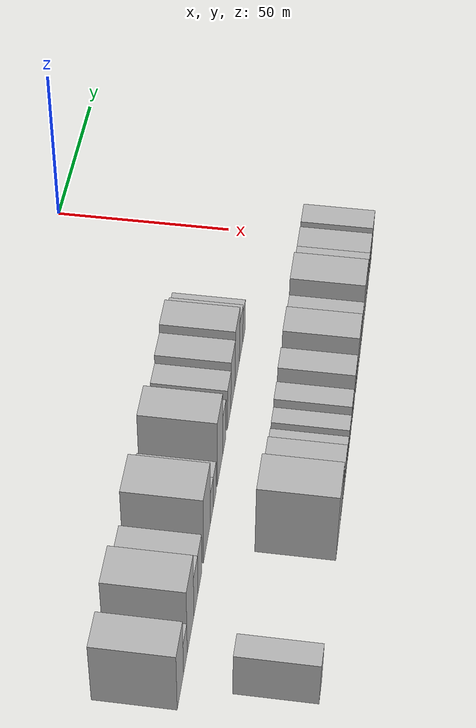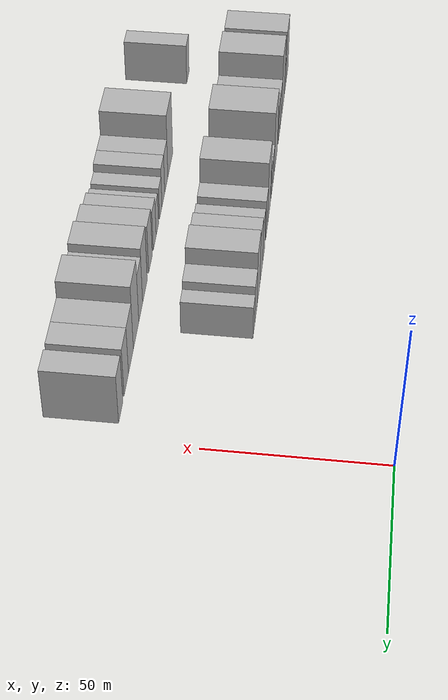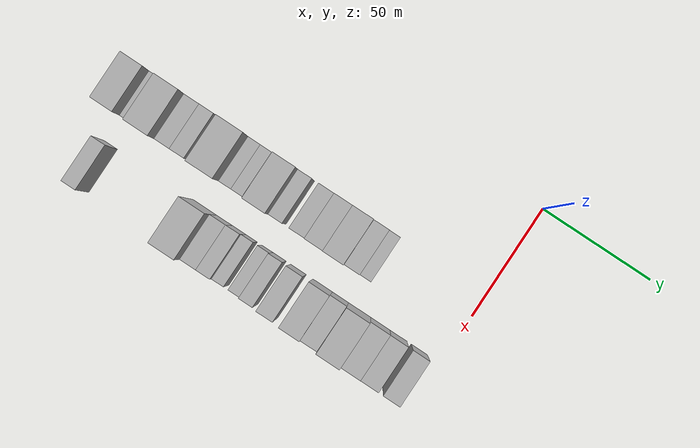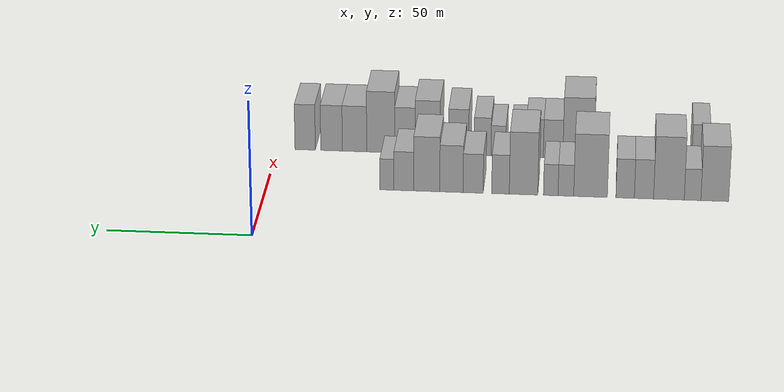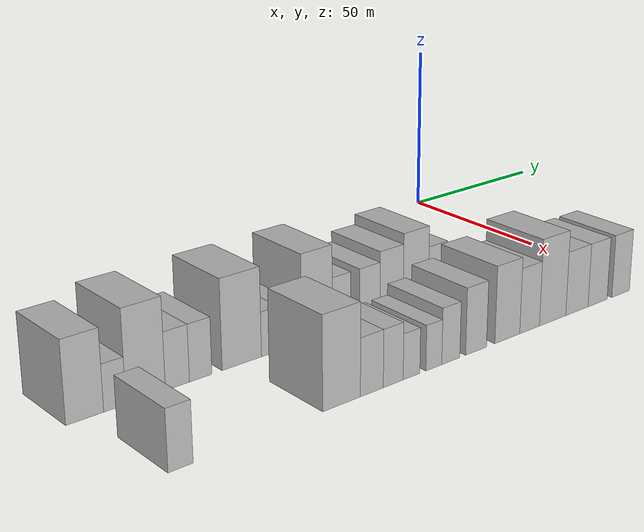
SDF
<sdf version="1.6">
 <world name="default">
  <model name="building_15">
   <static>1</static>
   <pose>50.0000 -158.1807 0 0.000000 0.000000 0.000000</pose>
   <link name="link">
    <pose>0 0 10.50 0 0 0</pose>
    <collision name="collision"><geometry><box><size>20.0000 9.7175 21.0000</size></box></geometry></collision>
    <visual name="visual">
     <cast_shadows>0</cast_shadows>
     <geometry><box><size>20.0000 9.7175 21.0000</size></box></geometry>
     <material>
      <script>
       <uri>model://HANNAS_wall/materials/scripts</uri>
       <uri>model://HANNAS_wall/materials/textures</uri>
       <name>vrc/HANNAS_wall</name>
      </script>
     </material>
    </visual>
   </link>
  </model>
  <model name="building_16">
   <static>1</static>
   <pose>50.0000 -150.4176 0 0.000000 0.000000 0.000000</pose>
   <link name="link">
    <pose>0 0 6.00 0 0 0</pose>
    <collision name="collision"><geometry><box><size>20.0000 5.8087 12.0000</size></box></geometry></collision>
    <visual name="visual">
     <cast_shadows>0</cast_shadows>
     <geometry><box><size>20.0000 5.8087 12.0000</size></box></geometry>
     <material>
      <script>
       <uri>model://HANNAS_wall/materials/scripts</uri>
       <uri>model://HANNAS_wall/materials/textures</uri>
       <name>vrc/HANNAS_wall</name>
      </script>
     </material>
    </visual>
   </link>
  </model>
  <model name="building_17">
   <static>1</static>
   <pose>50.0000 -142.1498 0 0.000000 0.000000 0.000000</pose>
   <link name="link">
    <pose>0 0 12.00 0 0 0</pose>
    <collision name="collision"><geometry><box><size>20.0000 10.7268 24.0000</size></box></geometry></collision>
    <visual name="visual">
     <cast_shadows>0</cast_shadows>
     <geometry><box><size>20.0000 10.7268 24.0000</size></box></geometry>
     <material>
      <script>
       <uri>model://HANNAS_wall/materials/scripts</uri>
       <uri>model://HANNAS_wall/materials/textures</uri>
       <name>vrc/HANNAS_wall</name>
      </script>
     </material>
    </visual>
   </link>
  </model>
  <model name="building_18">
   <static>1</static>
   <pose>50.0000 -133.4117 0 0.000000 0.000000 0.000000</pose>
   <link name="link">
    <pose>0 0 7.50 0 0 0</pose>
    <collision name="collision"><geometry><box><size>20.0000 6.7494 15.0000</size></box></geometry></collision>
    <visual name="visual">
     <cast_shadows>0</cast_shadows>
     <geometry><box><size>20.0000 6.7494 15.0000</size></box></geometry>
     <material>
      <script>
       <uri>model://HANNAS_wall/materials/scripts</uri>
       <uri>model://HANNAS_wall/materials/textures</uri>
       <name>vrc/HANNAS_wall</name>
      </script>
     </material>
    </visual>
   </link>
  </model>
  <model name="building_19">
   <static>1</static>
   <pose>50.0000 -126.8120 0 0.000000 0.000000 0.000000</pose>
   <link name="link">
    <pose>0 0 7.50 0 0 0</pose>
    <collision name="collision"><geometry><box><size>20.0000 6.4500 15.0000</size></box></geometry></collision>
    <visual name="visual">
     <cast_shadows>0</cast_shadows>
     <geometry><box><size>20.0000 6.4500 15.0000</size></box></geometry>
     <material>
      <script>
       <uri>model://HANNAS_wall/materials/scripts</uri>
       <uri>model://HANNAS_wall/materials/textures</uri>
       <name>vrc/HANNAS_wall</name>
      </script>
     </material>
    </visual>
   </link>
  </model>
  <model name="building_20">
   <static>1</static>
   <pose>50.0000 -114.6766 0 0.000000 0.000000 0.000000</pose>
   <link name="link">
    <pose>0 0 12.00 0 0 0</pose>
    <collision name="collision"><geometry><box><size>20.0000 11.8208 24.0000</size></box></geometry></collision>
    <visual name="visual">
     <cast_shadows>0</cast_shadows>
     <geometry><box><size>20.0000 11.8208 24.0000</size></box></geometry>
     <material>
      <script>
       <uri>model://HANNAS_wall/materials/scripts</uri>
       <uri>model://HANNAS_wall/materials/textures</uri>
       <name>vrc/HANNAS_wall</name>
      </script>
     </material>
    </visual>
   </link>
  </model>
  <model name="building_21">
   <static>1</static>
   <pose>50.0000 -106.0119 0 0.000000 0.000000 0.000000</pose>
   <link name="link">
    <pose>0 0 6.00 0 0 0</pose>
    <collision name="collision"><geometry><box><size>20.0000 5.5086 12.0000</size></box></geometry></collision>
    <visual name="visual">
     <cast_shadows>0</cast_shadows>
     <geometry><box><size>20.0000 5.5086 12.0000</size></box></geometry>
     <material>
      <script>
       <uri>model://HANNAS_wall/materials/scripts</uri>
       <uri>model://HANNAS_wall/materials/textures</uri>
       <name>vrc/HANNAS_wall</name>
      </script>
     </material>
    </visual>
   </link>
  </model>
  <model name="building_22">
   <static>1</static>
   <pose>50.0000 -100.6855 0 0.000000 0.000000 0.000000</pose>
   <link name="link">
    <pose>0 0 6.00 0 0 0</pose>
    <collision name="collision"><geometry><box><size>20.0000 5.1442 12.0000</size></box></geometry></collision>
    <visual name="visual">
     <cast_shadows>0</cast_shadows>
     <geometry><box><size>20.0000 5.1442 12.0000</size></box></geometry>
     <material>
      <script>
       <uri>model://HANNAS_wall/materials/scripts</uri>
       <uri>model://HANNAS_wall/materials/textures</uri>
       <name>vrc/HANNAS_wall</name>
      </script>
     </material>
    </visual>
   </link>
  </model>
  <model name="building_23">
   <static>1</static>
   <pose>50.0000 -91.1002 0 0.000000 0.000000 0.000000</pose>
   <link name="link">
    <pose>0 0 12.00 0 0 0</pose>
    <collision name="collision"><geometry><box><size>20.0000 10.0264 24.0000</size></box></geometry></collision>
    <visual name="visual">
     <cast_shadows>0</cast_shadows>
     <geometry><box><size>20.0000 10.0264 24.0000</size></box></geometry>
     <material>
      <script>
       <uri>model://HANNAS_wall/materials/scripts</uri>
       <uri>model://HANNAS_wall/materials/textures</uri>
       <name>vrc/HANNAS_wall</name>
      </script>
     </material>
    </visual>
   </link>
  </model>
  <model name="building_24">
   <static>1</static>
   <pose>50.0000 -82.9708 0 0.000000 0.000000 0.000000</pose>
   <link name="link">
    <pose>0 0 7.50 0 0 0</pose>
    <collision name="collision"><geometry><box><size>20.0000 6.2323 15.0000</size></box></geometry></collision>
    <visual name="visual">
     <cast_shadows>0</cast_shadows>
     <geometry><box><size>20.0000 6.2323 15.0000</size></box></geometry>
     <material>
      <script>
       <uri>model://HANNAS_wall/materials/scripts</uri>
       <uri>model://HANNAS_wall/materials/textures</uri>
       <name>vrc/HANNAS_wall</name>
      </script>
     </material>
    </visual>
   </link>
  </model>
  <model name="building_25">
   <static>1</static>
   <pose>50.0000 -73.3102 0 0.000000 0.000000 0.000000</pose>
   <link name="link">
    <pose>0 0 7.50 0 0 0</pose>
    <collision name="collision"><geometry><box><size>20.0000 7.0889 15.0000</size></box></geometry></collision>
    <visual name="visual">
     <cast_shadows>0</cast_shadows>
     <geometry><box><size>20.0000 7.0889 15.0000</size></box></geometry>
     <material>
      <script>
       <uri>model://HANNAS_wall/materials/scripts</uri>
       <uri>model://HANNAS_wall/materials/textures</uri>
       <name>vrc/HANNAS_wall</name>
      </script>
     </material>
    </visual>
   </link>
  </model>
  <model name="building_26">
   <static>1</static>
   <pose>50.0000 -65.6326 0 0.000000 0.000000 0.000000</pose>
   <link name="link">
    <pose>0 0 9.00 0 0 0</pose>
    <collision name="collision"><geometry><box><size>20.0000 8.2663 18.0000</size></box></geometry></collision>
    <visual name="visual">
     <cast_shadows>0</cast_shadows>
     <geometry><box><size>20.0000 8.2663 18.0000</size></box></geometry>
     <material>
      <script>
       <uri>model://HANNAS_wall/materials/scripts</uri>
       <uri>model://HANNAS_wall/materials/textures</uri>
       <name>vrc/HANNAS_wall</name>
      </script>
     </material>
    </visual>
   </link>
  </model>
  <model name="building_27">
   <static>1</static>
   <pose>50.0000 -56.8797 0 0.000000 0.000000 0.000000</pose>
   <link name="link">
    <pose>0 0 10.50 0 0 0</pose>
    <collision name="collision"><geometry><box><size>20.0000 9.2396 21.0000</size></box></geometry></collision>
    <visual name="visual">
     <cast_shadows>0</cast_shadows>
     <geometry><box><size>20.0000 9.2396 21.0000</size></box></geometry>
     <material>
      <script>
       <uri>model://HANNAS_wall/materials/scripts</uri>
       <uri>model://HANNAS_wall/materials/textures</uri>
       <name>vrc/HANNAS_wall</name>
      </script>
     </material>
    </visual>
   </link>
  </model>
  <model name="building_28">
   <static>1</static>
   <pose>50.0000 -48.7602 0 0.000000 0.000000 0.000000</pose>
   <link name="link">
    <pose>0 0 7.50 0 0 0</pose>
    <collision name="collision"><geometry><box><size>20.0000 6.9993 15.0000</size></box></geometry></collision>
    <visual name="visual">
     <cast_shadows>0</cast_shadows>
     <geometry><box><size>20.0000 6.9993 15.0000</size></box></geometry>
     <material>
      <script>
       <uri>model://HANNAS_wall/materials/scripts</uri>
       <uri>model://HANNAS_wall/materials/textures</uri>
       <name>vrc/HANNAS_wall</name>
      </script>
     </material>
    </visual>
   </link>
  </model>
  <model name="building_29">
   <static>1</static>
   <pose>50.0000 -42.7589 0 0.000000 0.000000 0.000000</pose>
   <link name="link">
    <pose>0 0 6.00 0 0 0</pose>
    <collision name="collision"><geometry><box><size>20.0000 5.0032 12.0000</size></box></geometry></collision>
    <visual name="visual">
     <cast_shadows>0</cast_shadows>
     <geometry><box><size>20.0000 5.0032 12.0000</size></box></geometry>
     <material>
      <script>
       <uri>model://HANNAS_wall/materials/scripts</uri>
       <uri>model://HANNAS_wall/materials/textures</uri>
       <name>vrc/HANNAS_wall</name>
      </script>
     </material>
    </visual>
   </link>
  </model>
  <model name="building_71">
   <static>1</static>
   <pose>82.0000 -153.7843 0 0.000000 0.000000 0.000000</pose>
   <link name="link">
    <pose>0 0 7.50 0 0 0</pose>
    <collision name="collision"><geometry><box><size>20.0000 6.3149 15.0000</size></box></geometry></collision>
    <visual name="visual">
     <cast_shadows>0</cast_shadows>
     <geometry><box><size>20.0000 6.3149 15.0000</size></box></geometry>
     <material>
      <script>
       <uri>model://HANNAS_wall/materials/scripts</uri>
       <uri>model://HANNAS_wall/materials/textures</uri>
       <name>vrc/HANNAS_wall</name>
      </script>
     </material>
    </visual>
   </link>
  </model>
  <model name="building_72">
   <static>1</static>
   <pose>82.0000 -109.7292 0 0.000000 0.000000 0.000000</pose>
   <link name="link">
    <pose>0 0 12.00 0 0 0</pose>
    <collision name="collision"><geometry><box><size>20.0000 11.2651 24.0000</size></box></geometry></collision>
    <visual name="visual">
     <cast_shadows>0</cast_shadows>
     <geometry><box><size>20.0000 11.2651 24.0000</size></box></geometry>
     <material>
      <script>
       <uri>model://HANNAS_wall/materials/scripts</uri>
       <uri>model://HANNAS_wall/materials/textures</uri>
       <name>vrc/HANNAS_wall</name>
      </script>
     </material>
    </visual>
   </link>
  </model>
  <model name="building_73">
   <static>1</static>
   <pose>82.0000 -100.5421 0 0.000000 0.000000 0.000000</pose>
   <link name="link">
    <pose>0 0 7.50 0 0 0</pose>
    <collision name="collision"><geometry><box><size>20.0000 7.1089 15.0000</size></box></geometry></collision>
    <visual name="visual">
     <cast_shadows>0</cast_shadows>
     <geometry><box><size>20.0000 7.1089 15.0000</size></box></geometry>
     <material>
      <script>
       <uri>model://HANNAS_wall/materials/scripts</uri>
       <uri>model://HANNAS_wall/materials/textures</uri>
       <name>vrc/HANNAS_wall</name>
      </script>
     </material>
    </visual>
   </link>
  </model>
  <model name="building_74">
   <static>1</static>
   <pose>82.0000 -93.8319 0 0.000000 0.000000 0.000000</pose>
   <link name="link">
    <pose>0 0 7.50 0 0 0</pose>
    <collision name="collision"><geometry><box><size>20.0000 6.3115 15.0000</size></box></geometry></collision>
    <visual name="visual">
     <cast_shadows>0</cast_shadows>
     <geometry><box><size>20.0000 6.3115 15.0000</size></box></geometry>
     <material>
      <script>
       <uri>model://HANNAS_wall/materials/scripts</uri>
       <uri>model://HANNAS_wall/materials/textures</uri>
       <name>vrc/HANNAS_wall</name>
      </script>
     </material>
    </visual>
   </link>
  </model>
  <model name="building_75">
   <static>1</static>
   <pose>82.0000 -87.9706 0 0.000000 0.000000 0.000000</pose>
   <link name="link">
    <pose>0 0 6.00 0 0 0</pose>
    <collision name="collision"><geometry><box><size>20.0000 5.4111 12.0000</size></box></geometry></collision>
    <visual name="visual">
     <cast_shadows>0</cast_shadows>
     <geometry><box><size>20.0000 5.4111 12.0000</size></box></geometry>
     <material>
      <script>
       <uri>model://HANNAS_wall/materials/scripts</uri>
       <uri>model://HANNAS_wall/materials/textures</uri>
       <name>vrc/HANNAS_wall</name>
      </script>
     </material>
    </visual>
   </link>
  </model>
  <model name="building_76">
   <static>1</static>
   <pose>82.0000 -80.6211 0 0.000000 0.000000 0.000000</pose>
   <link name="link">
    <pose>0 0 6.00 0 0 0</pose>
    <collision name="collision"><geometry><box><size>20.0000 5.2880 12.0000</size></box></geometry></collision>
    <visual name="visual">
     <cast_shadows>0</cast_shadows>
     <geometry><box><size>20.0000 5.2880 12.0000</size></box></geometry>
     <material>
      <script>
       <uri>model://HANNAS_wall/materials/scripts</uri>
       <uri>model://HANNAS_wall/materials/textures</uri>
       <name>vrc/HANNAS_wall</name>
      </script>
     </material>
    </visual>
   </link>
  </model>
  <model name="building_77">
   <static>1</static>
   <pose>82.0000 -74.8862 0 0.000000 0.000000 0.000000</pose>
   <link name="link">
    <pose>0 0 7.50 0 0 0</pose>
    <collision name="collision"><geometry><box><size>20.0000 6.1816 15.0000</size></box></geometry></collision>
    <visual name="visual">
     <cast_shadows>0</cast_shadows>
     <geometry><box><size>20.0000 6.1816 15.0000</size></box></geometry>
     <material>
      <script>
       <uri>model://HANNAS_wall/materials/scripts</uri>
       <uri>model://HANNAS_wall/materials/textures</uri>
       <name>vrc/HANNAS_wall</name>
      </script>
     </material>
    </visual>
   </link>
  </model>
  <model name="building_78">
   <static>1</static>
   <pose>82.0000 -66.1089 0 0.000000 0.000000 0.000000</pose>
   <link name="link">
    <pose>0 0 9.00 0 0 0</pose>
    <collision name="collision"><geometry><box><size>20.0000 7.3730 18.0000</size></box></geometry></collision>
    <visual name="visual">
     <cast_shadows>0</cast_shadows>
     <geometry><box><size>20.0000 7.3730 18.0000</size></box></geometry>
     <material>
      <script>
       <uri>model://HANNAS_wall/materials/scripts</uri>
       <uri>model://HANNAS_wall/materials/textures</uri>
       <name>vrc/HANNAS_wall</name>
      </script>
     </material>
    </visual>
   </link>
  </model>
  <model name="building_79">
   <static>1</static>
   <pose>82.0000 -54.8564 0 0.000000 0.000000 0.000000</pose>
   <link name="link">
    <pose>0 0 10.50 0 0 0</pose>
    <collision name="collision"><geometry><box><size>20.0000 9.1320 21.0000</size></box></geometry></collision>
    <visual name="visual">
     <cast_shadows>0</cast_shadows>
     <geometry><box><size>20.0000 9.1320 21.0000</size></box></geometry>
     <material>
      <script>
       <uri>model://HANNAS_wall/materials/scripts</uri>
       <uri>model://HANNAS_wall/materials/textures</uri>
       <name>vrc/HANNAS_wall</name>
      </script>
     </material>
    </visual>
   </link>
  </model>
  <model name="building_80">
   <static>1</static>
   <pose>82.0000 -46.5718 0 0.000000 0.000000 0.000000</pose>
   <link name="link">
    <pose>0 0 9.00 0 0 0</pose>
    <collision name="collision"><geometry><box><size>20.0000 7.4371 18.0000</size></box></geometry></collision>
    <visual name="visual">
     <cast_shadows>0</cast_shadows>
     <geometry><box><size>20.0000 7.4371 18.0000</size></box></geometry>
     <material>
      <script>
       <uri>model://HANNAS_wall/materials/scripts</uri>
       <uri>model://HANNAS_wall/materials/textures</uri>
       <name>vrc/HANNAS_wall</name>
      </script>
     </material>
    </visual>
   </link>
  </model>
  <model name="building_81">
   <static>1</static>
   <pose>82.0000 -37.7172 0 0.000000 0.000000 0.000000</pose>
   <link name="link">
    <pose>0 0 12.00 0 0 0</pose>
    <collision name="collision"><geometry><box><size>20.0000 10.2720 24.0000</size></box></geometry></collision>
    <visual name="visual">
     <cast_shadows>0</cast_shadows>
     <geometry><box><size>20.0000 10.2720 24.0000</size></box></geometry>
     <material>
      <script>
       <uri>model://HANNAS_wall/materials/scripts</uri>
       <uri>model://HANNAS_wall/materials/textures</uri>
       <name>vrc/HANNAS_wall</name>
      </script>
     </material>
    </visual>
   </link>
  </model>
  <model name="building_82">
   <static>1</static>
   <pose>82.0000 -28.1083 0 0.000000 0.000000 0.000000</pose>
   <link name="link">
    <pose>0 0 9.00 0 0 0</pose>
    <collision name="collision"><geometry><box><size>20.0000 8.9458 18.0000</size></box></geometry></collision>
    <visual name="visual">
     <cast_shadows>0</cast_shadows>
     <geometry><box><size>20.0000 8.9458 18.0000</size></box></geometry>
     <material>
      <script>
       <uri>model://HANNAS_wall/materials/scripts</uri>
       <uri>model://HANNAS_wall/materials/textures</uri>
       <name>vrc/HANNAS_wall</name>
      </script>
     </material>
    </visual>
   </link>
  </model>
  <model name="building_83">
   <static>1</static>
   <pose>82.0000 -19.6749 0 0.000000 0.000000 0.000000</pose>
   <link name="link">
    <pose>0 0 9.00 0 0 0</pose>
    <collision name="collision"><geometry><box><size>20.0000 7.9210 18.0000</size></box></geometry></collision>
    <visual name="visual">
     <cast_shadows>0</cast_shadows>
     <geometry><box><size>20.0000 7.9210 18.0000</size></box></geometry>
     <material>
      <script>
       <uri>model://HANNAS_wall/materials/scripts</uri>
       <uri>model://HANNAS_wall/materials/textures</uri>
       <name>vrc/HANNAS_wall</name>
      </script>
     </material>
    </visual>
   </link>
  </model>
  <model name="building_84">
   <static>1</static>
   <pose>82.0000 -9.9742 0 0.000000 0.000000 0.000000</pose>
   <link name="link">
    <pose>0 0 9.00 0 0 0</pose>
    <collision name="collision"><geometry><box><size>20.0000 7.4805 18.0000</size></box></geometry></collision>
    <visual name="visual">
     <cast_shadows>0</cast_shadows>
     <geometry><box><size>20.0000 7.4805 18.0000</size></box></geometry>
     <material>
      <script>
       <uri>model://HANNAS_wall/materials/scripts</uri>
       <uri>model://HANNAS_wall/materials/textures</uri>
       <name>vrc/HANNAS_wall</name>
      </script>
     </material>
    </visual>
   </link>
  </model>
 </world>
</sdf>
